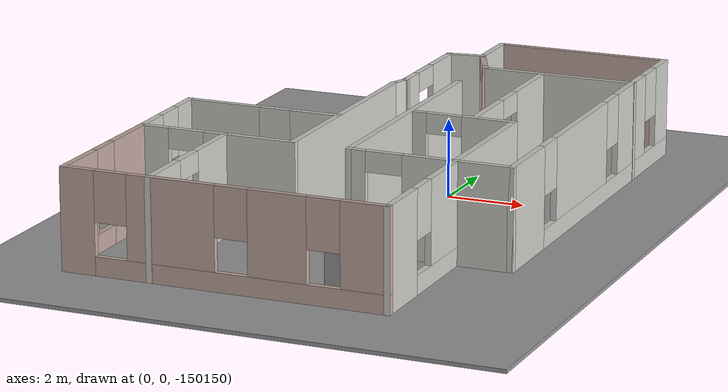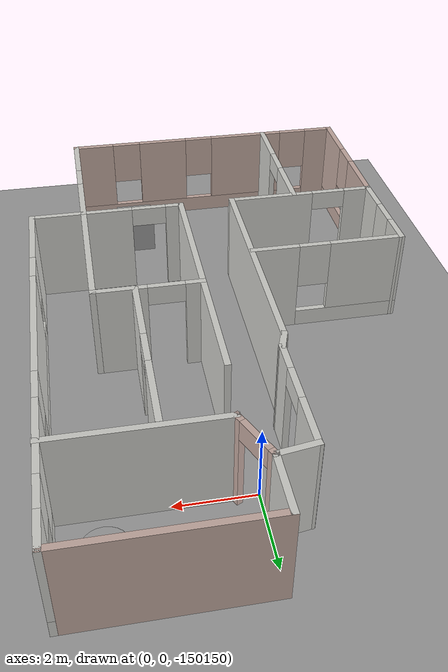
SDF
<sdf version="1.6">
 <world name="default">
  <model name="ground_plane">
   <static>1</static>
   <link name="link">
    <collision name="collision">
     <geometry><plane><normal>0 0 1</normal><size>100 100</size></plane></geometry>
     <surface>
      <contact><collide_bitmask>65535</collide_bitmask></contact>
      <friction><ode><mu>100</mu><mu2>50</mu2></ode></friction>
     </surface>
    </collision>
    <visual name="visual">
     <cast_shadows>0</cast_shadows>
     <geometry><plane><normal>0 0 1</normal><size>100 100</size></plane></geometry>
     <material>
      <script><uri>file://media/materials/scripts/gazebo.material</uri><name>Gazebo/Grey</name></script>
     </material>
    </visual>
   </link>
  </model>
  <model name="House1">
   <link name="link_0">
    <inertial>
     <mass>1</mass>
     <inertia>
      <ixx>0.166667</ixx>
      <ixy>0</ixy>
      <ixz>0</ixz>
      <iyy>0.166667</iyy>
      <iyz>0</iyz>
      <izz>0.166667</izz>
     </inertia>
    </inertial>
    <pose>0.40275 -6.78902 0.25 0 -0 0</pose>
    <visual name="visual">
     <geometry><box><size>1 1 1</size></box></geometry>
     <material>
      <lighting>1</lighting>
      <script><uri>file://media/materials/scripts/gazebo.material</uri><name>Gazebo/Grey</name></script>
     </material>
    </visual>
    <collision name="collision">
     <geometry><box><size>1 1 1</size></box></geometry>
     <surface>
      <friction>
       <ode><mu>1</mu><mu2>1</mu2><fdir1>0 0 0</fdir1><slip1>0</slip1><slip2>0</slip2></ode>
       <torsional>
        <coefficient>1</coefficient>
        <patch_radius>0</patch_radius>
        <surface_radius>0</surface_radius>
        <use_patch_radius>1</use_patch_radius>
        <ode><slip>0</slip></ode>
       </torsional>
      </friction>
      <bounce><restitution_coefficient>0</restitution_coefficient><threshold>1e+06</threshold></bounce>
      <contact>
       <collide_without_contact>0</collide_without_contact>
       <collide_without_contact_bitmask>1</collide_without_contact_bitmask>
       <collide_bitmask>1</collide_bitmask>
       <ode>
        <soft_cfm>0</soft_cfm>
        <soft_erp>0.2</soft_erp>
        <kp>1e+13</kp>
        <kd>1</kd>
        <max_vel>0.01</max_vel>
        <min_depth>0</min_depth>
       </ode>
       <bullet>
        <split_impulse>1</split_impulse>
        <split_impulse_penetration_threshold>-0.01</split_impulse_penetration_threshold>
        <soft_cfm>0</soft_cfm>
        <soft_erp>0.2</soft_erp>
        <kp>1e+13</kp>
        <kd>1</kd>
       </bullet>
      </contact>
     </surface>
    </collision>
   </link>
   <link name="link_1">
    <inertial>
     <mass>1</mass>
     <inertia><ixx>0.145833</ixx><ixy>0</ixy><ixz>0</ixz><iyy>0.145833</iyy><iyz>0</iyz><izz>0.125</izz></inertia>
    </inertial>
    <pose>2.1728 5.08141 0.25 0 -0 0</pose>
    <visual name="visual">
     <geometry><cylinder><radius>0.5</radius><length>1</length></cylinder></geometry>
     <material>
      <lighting>1</lighting>
      <script><uri>file://media/materials/scripts/gazebo.material</uri><name>Gazebo/Grey</name></script>
     </material>
    </visual>
    <collision name="collision">
     <geometry><cylinder><radius>0.5</radius><length>1</length></cylinder></geometry>
     <surface>
      <friction>
       <ode><mu>1</mu><mu2>1</mu2><fdir1>0 0 0</fdir1><slip1>0</slip1><slip2>0</slip2></ode>
       <torsional>
        <coefficient>1</coefficient>
        <patch_radius>0</patch_radius>
        <surface_radius>0</surface_radius>
        <use_patch_radius>1</use_patch_radius>
        <ode><slip>0</slip></ode>
       </torsional>
      </friction>
      <bounce><restitution_coefficient>0</restitution_coefficient><threshold>1e+06</threshold></bounce>
      <contact>
       <collide_without_contact>0</collide_without_contact>
       <collide_without_contact_bitmask>1</collide_without_contact_bitmask>
       <collide_bitmask>1</collide_bitmask>
       <ode>
        <soft_cfm>0</soft_cfm>
        <soft_erp>0.2</soft_erp>
        <kp>1e+13</kp>
        <kd>1</kd>
        <max_vel>0.01</max_vel>
        <min_depth>0</min_depth>
       </ode>
       <bullet>
        <split_impulse>1</split_impulse>
        <split_impulse_penetration_threshold>-0.01</split_impulse_penetration_threshold>
        <soft_cfm>0</soft_cfm>
        <soft_erp>0.2</soft_erp>
        <kp>1e+13</kp>
        <kd>1</kd>
       </bullet>
      </contact>
     </surface>
    </collision>
   </link>
   <model name="House1">
    <model name="House1">
     <model name="House1">
      <pose>-1e-06 -4e-06 0 0 -0 1.56364</pose>
      <link name="Wall_0">
       <collision name="Wall_0_Collision">
        <geometry><box><size>6 0.15 2.5</size></box></geometry>
        <pose>0 0 1.25 0 -0 0</pose>
       </collision>
       <visual name="Wall_0_Visual">
        <pose>0 0 1.25 0 -0 0</pose>
        <geometry><box><size>6 0.15 2.5</size></box></geometry>
        <material>
         <script><uri>file://media/materials/scripts/gazebo.material</uri><name>Gazebo/CeilingTiled</name></script>
         <ambient>0.760784 0.662745 0.627451 1</ambient>
        </material>
        <meta><layer>0</layer></meta>
       </visual>
       <pose>0.448232 -0.734689 0 0 -0 3.14159</pose>
      </link>
      <link name="Wall_10">
       <collision name="Wall_10_Collision">
        <geometry><box><size>1.5 0.15 2.5</size></box></geometry>
        <pose>0 0 1.25 0 -0 0</pose>
       </collision>
       <visual name="Wall_10_Visual">
        <pose>0 0 1.25 0 -0 0</pose>
        <geometry><box><size>1.5 0.15 2.5</size></box></geometry>
        <material>
         <script><uri>file://media/materials/scripts/gazebo.material</uri><name>Gazebo/CeilingTiled</name></script>
         <ambient>0.760784 0.662745 0.627451 1</ambient>
        </material>
        <meta><layer>0</layer></meta>
       </visual>
       <pose>3.37323 3.94031 0 0 -0 1.5708</pose>
      </link>
      <link name="Wall_11">
       <pose>-1.92677 4.61531 0 0 -0 3.14159</pose>
       <visual name="Wall_11_Visual_0">
        <pose>-4.38744 0 1.25 0 -0 0</pose>
        <geometry><box><size>1.97511 0.15 2.5</size></box></geometry>
        <material>
         <script><uri>file://media/materials/scripts/gazebo.material</uri><name>Gazebo/CeilingTiled</name></script>
         <ambient>0.760784 0.662745 0.627451 1</ambient>
        </material>
        <meta><layer>0</layer></meta>
       </visual>
       <collision name="Wall_11_Collision_0">
        <geometry><box><size>1.97511 0.15 2.5</size></box></geometry>
        <pose>-4.38744 0 1.25 0 -0 0</pose>
       </collision>
       <visual name="Wall_11_Visual_1">
        <pose>0.987555 0 0.25 0 -0 0</pose>
        <geometry><box><size>8.77489 0.15 0.5</size></box></geometry>
        <material>
         <script><uri>file://media/materials/scripts/gazebo.material</uri><name>Gazebo/CeilingTiled</name></script>
         <ambient>0.760784 0.662745 0.627451 1</ambient>
        </material>
        <meta><layer>0</layer></meta>
       </visual>
       <collision name="Wall_11_Collision_1">
        <geometry><box><size>8.77489 0.15 0.5</size></box></geometry>
        <pose>0.987555 0 0.25 0 -0 0</pose>
       </collision>
       <visual name="Wall_11_Visual_2">
        <pose>-0.877908 0 1.5 0 -0 0</pose>
        <geometry><box><size>3.44396 0.15 2</size></box></geometry>
        <material>
         <script><uri>file://media/materials/scripts/gazebo.material</uri><name>Gazebo/CeilingTiled</name></script>
         <ambient>0.760784 0.662745 0.627451 1</ambient>
        </material>
        <meta><layer>0</layer></meta>
       </visual>
       <collision name="Wall_11_Collision_2">
        <geometry><box><size>3.44396 0.15 2</size></box></geometry>
        <pose>-0.877908 0 1.5 0 -0 0</pose>
       </collision>
       <visual name="Wall_11_Visual_3">
        <pose>2.65145 0 1.5 0 -0 0</pose>
        <geometry><box><size>2.01476 0.15 2</size></box></geometry>
        <material>
         <script><uri>file://media/materials/scripts/gazebo.material</uri><name>Gazebo/CeilingTiled</name></script>
         <ambient>0.760784 0.662745 0.627451 1</ambient>
        </material>
        <meta><layer>0</layer></meta>
       </visual>
       <collision name="Wall_11_Collision_3">
        <geometry><box><size>2.01476 0.15 2</size></box></geometry>
        <pose>2.65145 0 1.5 0 -0 0</pose>
       </collision>
       <visual name="Wall_11_Visual_4">
        <pose>4.91692 0 1.5 0 -0 0</pose>
        <geometry><box><size>0.916165 0.15 2</size></box></geometry>
        <material>
         <script><uri>file://media/materials/scripts/gazebo.material</uri><name>Gazebo/CeilingTiled</name></script>
         <ambient>0.760784 0.662745 0.627451 1</ambient>
        </material>
        <meta><layer>0</layer></meta>
       </visual>
       <collision name="Wall_11_Collision_4">
        <geometry><box><size>0.916165 0.15 2</size></box></geometry>
        <pose>4.91692 0 1.5 0 -0 0</pose>
       </collision>
       <visual name="Wall_11_Visual_5">
        <pose>-2.99989 0 1.9 0 -0 0</pose>
        <geometry><box><size>0.8 0.15 1.2</size></box></geometry>
        <material>
         <script><uri>file://media/materials/scripts/gazebo.material</uri><name>Gazebo/CeilingTiled</name></script>
         <ambient>0.760784 0.662745 0.627451 1</ambient>
        </material>
        <meta><layer>0</layer></meta>
       </visual>
       <collision name="Wall_11_Collision_5">
        <geometry><box><size>0.8 0.15 1.2</size></box></geometry>
        <pose>-2.99989 0 1.9 0 -0 0</pose>
       </collision>
       <visual name="Wall_11_Visual_6">
        <pose>1.24407 0 1.9 0 -0 0</pose>
        <geometry><box><size>0.8 0.15 1.2</size></box></geometry>
        <material>
         <script><uri>file://media/materials/scripts/gazebo.material</uri><name>Gazebo/CeilingTiled</name></script>
         <ambient>0.760784 0.662745 0.627451 1</ambient>
        </material>
        <meta><layer>0</layer></meta>
       </visual>
       <collision name="Wall_11_Collision_6">
        <geometry><box><size>0.8 0.15 1.2</size></box></geometry>
        <pose>1.24407 0 1.9 0 -0 0</pose>
       </collision>
       <visual name="Wall_11_Visual_7">
        <pose>4.05884 0 1.9 0 -0 0</pose>
        <geometry><box><size>0.8 0.15 1.2</size></box></geometry>
        <material>
         <script><uri>file://media/materials/scripts/gazebo.material</uri><name>Gazebo/CeilingTiled</name></script>
         <ambient>0.760784 0.662745 0.627451 1</ambient>
        </material>
        <meta><layer>0</layer></meta>
       </visual>
       <collision name="Wall_11_Collision_7">
        <geometry><box><size>0.8 0.15 1.2</size></box></geometry>
        <pose>4.05884 0 1.9 0 -0 0</pose>
       </collision>
      </link>
      <link name="Wall_12">
       <collision name="Wall_12_Collision">
        <geometry><box><size>4.5 0.15 2.5</size></box></geometry>
        <pose>0 0 1.25 0 -0 0</pose>
       </collision>
       <visual name="Wall_12_Visual">
        <pose>0 0 1.25 0 -0 0</pose>
        <geometry><box><size>4.5 0.15 2.5</size></box></geometry>
        <material>
         <script><uri>file://media/materials/scripts/gazebo.material</uri><name>Gazebo/Grey</name></script>
         <ambient>0.760784 0.662745 0.627451 1</ambient>
        </material>
        <meta><layer>0</layer></meta>
       </visual>
       <pose>-7.22677 2.44031 0 0 -0 -1.5708</pose>
      </link>
      <link name="Wall_13">
       <collision name="Wall_13_Collision">
        <geometry><box><size>1.5 0.15 2.5</size></box></geometry>
        <pose>0 0 1.25 0 -0 0</pose>
       </collision>
       <visual name="Wall_13_Visual">
        <pose>0 0 1.25 0 -0 0</pose>
        <geometry><box><size>1.5 0.15 2.5</size></box></geometry>
        <material>
         <script><uri>file://media/materials/scripts/gazebo.material</uri><name>Gazebo/CeilingTiled</name></script>
         <ambient>0.760784 0.662745 0.627451 1</ambient>
        </material>
        <meta><layer>0</layer></meta>
       </visual>
       <pose>-6.55177 0.265311 0 0 -0 0</pose>
      </link>
      <link name="Wall_14">
       <collision name="Wall_14_Collision">
        <geometry><box><size>1.01703 0.15 2.5</size></box></geometry>
        <pose>0 0 1.25 0 -0 0</pose>
       </collision>
       <visual name="Wall_14_Visual">
        <pose>0 0 1.25 0 -0 0</pose>
        <geometry><box><size>1.01703 0.15 2.5</size></box></geometry>
        <material>
         <script><uri>file://media/materials/scripts/gazebo.material</uri><name>Gazebo/CeilingTiled</name></script>
         <ambient>0.760784 0.662745 0.627451 1</ambient>
        </material>
        <meta><layer>0</layer></meta>
       </visual>
       <pose>-5.81267 -0.163441 0 0 -0 -1.42239</pose>
      </link>
      <link name="Wall_16">
       <pose>3.37323 1.96531 0 0 -0 -1.5708</pose>
       <visual name="Wall_16_Visual_0">
        <pose>-0.698643 0 1.25 0 -0 0</pose>
        <geometry><box><size>1.35271 0.15 2.5</size></box></geometry>
        <material>
         <script><uri>file://media/materials/scripts/gazebo.material</uri><name>Gazebo/CeilingTiled</name></script>
         <ambient>0.760784 0.662745 0.627451 1</ambient>
        </material>
        <meta><layer>0</layer></meta>
       </visual>
       <collision name="Wall_16_Collision_0">
        <geometry><box><size>1.35271 0.15 2.5</size></box></geometry>
        <pose>-0.698643 0 1.25 0 -0 0</pose>
       </collision>
       <visual name="Wall_16_Visual_1">
        <pose>1.12636 0 1.25 0 -0 0</pose>
        <geometry><box><size>0.497286 0.15 2.5</size></box></geometry>
        <material>
         <script><uri>file://media/materials/scripts/gazebo.material</uri><name>Gazebo/CeilingTiled</name></script>
         <ambient>0.760784 0.662745 0.627451 1</ambient>
        </material>
        <meta><layer>0</layer></meta>
       </visual>
       <collision name="Wall_16_Collision_1">
        <geometry><box><size>0.497286 0.15 2.5</size></box></geometry>
        <pose>1.12636 0 1.25 0 -0 0</pose>
       </collision>
       <visual name="Wall_16_Visual_2">
        <pose>0.427714 0 2.25 0 -0 0</pose>
        <geometry><box><size>0.9 0.15 0.5</size></box></geometry>
        <material>
         <script><uri>file://media/materials/scripts/gazebo.material</uri><name>Gazebo/CeilingTiled</name></script>
         <ambient>0.760784 0.662745 0.627451 1</ambient>
        </material>
        <meta><layer>0</layer></meta>
       </visual>
       <collision name="Wall_16_Collision_2">
        <geometry><box><size>0.9 0.15 0.5</size></box></geometry>
        <pose>0.427714 0 2.25 0 -0 0</pose>
       </collision>
      </link>
      <link name="Wall_17">
       <collision name="Wall_17_Collision">
        <geometry><box><size>6.75 0.15 2.5</size></box></geometry>
        <pose>0 0 1.25 0 -0 0</pose>
       </collision>
       <visual name="Wall_17_Visual">
        <pose>0 0 1.25 0 -0 0</pose>
        <geometry><box><size>6.75 0.15 2.5</size></box></geometry>
        <material>
         <script><uri>file://media/materials/scripts/gazebo.material</uri><name>Gazebo/CeilingTiled</name></script>
         <ambient>0.760784 0.662745 0.627451 1</ambient>
        </material>
        <meta><layer>0</layer></meta>
       </visual>
       <pose>0.073232 0.665311 0 0 -0 3.14159</pose>
      </link>
      <link name="Wall_19">
       <collision name="Wall_19_Collision">
        <geometry><box><size>4 0.15 2.5</size></box></geometry>
        <pose>0 0 1.25 0 -0 0</pose>
       </collision>
       <visual name="Wall_19_Visual">
        <pose>0 0 1.25 0 -0 0</pose>
        <geometry><box><size>4 0.15 2.5</size></box></geometry>
        <material>
         <script><uri>file://media/materials/scripts/gazebo.material</uri><name>Gazebo/CeilingTiled</name></script>
         <ambient>0.760784 0.662745 0.627451 1</ambient>
        </material>
        <meta><layer>0</layer></meta>
       </visual>
       <pose>-4.75623 2.70166 0 0 -0 -1.5708</pose>
      </link>
      <link name="Wall_2">
       <pose>-4.32357 -0.592193 0 0 -0 0</pose>
       <visual name="Wall_2_Visual_0">
        <pose>-0.841136 0 1.25 0 -0 0</pose>
        <geometry><box><size>1.31773 0.15 2.5</size></box></geometry>
        <material>
         <script><uri>file://media/materials/scripts/gazebo.material</uri><name>Gazebo/CeilingTiled</name></script>
         <ambient>0.760784 0.662745 0.627451 1</ambient>
        </material>
        <meta><layer>0</layer></meta>
       </visual>
       <collision name="Wall_2_Collision_0">
        <geometry><box><size>1.31773 0.15 2.5</size></box></geometry>
        <pose>-0.841136 0 1.25 0 -0 0</pose>
       </collision>
       <visual name="Wall_2_Visual_1">
        <pose>1.10886 0 1.25 0 -0 0</pose>
        <geometry><box><size>0.782271 0.15 2.5</size></box></geometry>
        <material>
         <script><uri>file://media/materials/scripts/gazebo.material</uri><name>Gazebo/CeilingTiled</name></script>
         <ambient>0.760784 0.662745 0.627451 1</ambient>
        </material>
        <meta><layer>0</layer></meta>
       </visual>
       <collision name="Wall_2_Collision_1">
        <geometry><box><size>0.782271 0.15 2.5</size></box></geometry>
        <pose>1.10886 0 1.25 0 -0 0</pose>
       </collision>
       <visual name="Wall_2_Visual_2">
        <pose>0.267729 0 2.25 0 -0 0</pose>
        <geometry><box><size>0.9 0.15 0.5</size></box></geometry>
        <material>
         <script><uri>file://media/materials/scripts/gazebo.material</uri><name>Gazebo/CeilingTiled</name></script>
         <ambient>0.760784 0.662745 0.627451 1</ambient>
        </material>
        <meta><layer>0</layer></meta>
       </visual>
       <collision name="Wall_2_Collision_2">
        <geometry><box><size>0.9 0.15 0.5</size></box></geometry>
        <pose>0.267729 0 2.25 0 -0 0</pose>
       </collision>
      </link>
      <link name="Wall_20">
       <pose>-5.3165 0.520985 0 0 -0 -2.71348</pose>
       <visual name="Wall_20_Visual_0">
        <pose>-0.559907 0 1.25 0 -0 0</pose>
        <geometry><box><size>0.261885 0.15 2.5</size></box></geometry>
        <material>
         <script><uri>file://media/materials/scripts/gazebo.material</uri><name>Gazebo/Grey</name></script>
         <ambient>0.760784 0.662745 0.627451 1</ambient>
        </material>
        <meta><layer>0</layer></meta>
       </visual>
       <collision name="Wall_20_Collision_0">
        <geometry><box><size>0.261885 0.15 2.5</size></box></geometry>
        <pose>-0.559907 0 1.25 0 -0 0</pose>
       </collision>
       <visual name="Wall_20_Visual_1">
        <pose>0.580942 0 1.25 0 -0 0</pose>
        <geometry><box><size>0.219813 0.15 2.5</size></box></geometry>
        <material>
         <script><uri>file://media/materials/scripts/gazebo.material</uri><name>Gazebo/Grey</name></script>
         <ambient>0.760784 0.662745 0.627451 1</ambient>
        </material>
        <meta><layer>0</layer></meta>
       </visual>
       <collision name="Wall_20_Collision_1">
        <geometry><box><size>0.219813 0.15 2.5</size></box></geometry>
        <pose>0.580942 0 1.25 0 -0 0</pose>
       </collision>
       <visual name="Wall_20_Visual_2">
        <pose>0.021036 0 2.25 0 -0 0</pose>
        <geometry><box><size>0.9 0.15 0.5</size></box></geometry>
        <material>
         <script><uri>file://media/materials/scripts/gazebo.material</uri><name>Gazebo/Grey</name></script>
         <ambient>0.760784 0.662745 0.627451 1</ambient>
        </material>
        <meta><layer>0</layer></meta>
       </visual>
       <collision name="Wall_20_Collision_2">
        <geometry><box><size>0.9 0.15 0.5</size></box></geometry>
        <pose>0.021036 0 2.25 0 -0 0</pose>
       </collision>
      </link>
      <link name="Wall_23">
       <collision name="Wall_23_Collision">
        <geometry><box><size>3.75 0.15 2.5</size></box></geometry>
        <pose>0 0 1.25 0 -0 0</pose>
       </collision>
       <visual name="Wall_23_Visual">
        <pose>0 0 1.25 0 -0 0</pose>
        <geometry><box><size>3.75 0.15 2.5</size></box></geometry>
        <material>
         <script><uri>file://media/materials/scripts/gazebo.material</uri><name>Gazebo/CeilingTiled</name></script>
         <ambient>0.760784 0.662745 0.627451 1</ambient>
        </material>
        <meta><layer>0</layer></meta>
       </visual>
       <pose>1.57323 3.26531 0 0 -0 3.14159</pose>
      </link>
      <link name="Wall_24">
       <pose>-0.226768 1.96531 0 0 -0 -1.5708</pose>
       <visual name="Wall_24_Visual_0">
        <pose>-0.698643 0 1.25 0 -0 0</pose>
        <geometry><box><size>1.35271 0.15 2.5</size></box></geometry>
        <material>
         <script><uri>file://media/materials/scripts/gazebo.material</uri><name>Gazebo/CeilingTiled</name></script>
         <ambient>0.760784 0.662745 0.627451 1</ambient>
        </material>
        <meta><layer>0</layer></meta>
       </visual>
       <collision name="Wall_24_Collision_0">
        <geometry><box><size>1.35271 0.15 2.5</size></box></geometry>
        <pose>-0.698643 0 1.25 0 -0 0</pose>
       </collision>
       <visual name="Wall_24_Visual_1">
        <pose>1.12636 0 1.25 0 -0 0</pose>
        <geometry><box><size>0.497286 0.15 2.5</size></box></geometry>
        <material>
         <script><uri>file://media/materials/scripts/gazebo.material</uri><name>Gazebo/CeilingTiled</name></script>
         <ambient>0.760784 0.662745 0.627451 1</ambient>
        </material>
        <meta><layer>0</layer></meta>
       </visual>
       <collision name="Wall_24_Collision_1">
        <geometry><box><size>0.497286 0.15 2.5</size></box></geometry>
        <pose>1.12636 0 1.25 0 -0 0</pose>
       </collision>
       <visual name="Wall_24_Visual_2">
        <pose>0.427714 0 2.25 0 -0 0</pose>
        <geometry><box><size>0.9 0.15 0.5</size></box></geometry>
        <material>
         <script><uri>file://media/materials/scripts/gazebo.material</uri><name>Gazebo/CeilingTiled</name></script>
         <ambient>0.760784 0.662745 0.627451 1</ambient>
        </material>
        <meta><layer>0</layer></meta>
       </visual>
       <collision name="Wall_24_Collision_2">
        <geometry><box><size>0.9 0.15 0.5</size></box></geometry>
        <pose>0.427714 0 2.25 0 -0 0</pose>
       </collision>
      </link>
      <link name="Wall_26">
       <pose>-2.42974 2.27778 0 0 -0 3.14159</pose>
       <visual name="Wall_26_Visual_0">
        <pose>-1.36193 0 1.25 0 -0 0</pose>
        <geometry><box><size>1.77615 0.15 2.5</size></box></geometry>
        <material>
         <script><uri>file://media/materials/scripts/gazebo.material</uri><name>Gazebo/CeilingTiled</name></script>
         <ambient>0.760784 0.662745 0.627451 1</ambient>
        </material>
        <meta><layer>0</layer></meta>
       </visual>
       <collision name="Wall_26_Collision_0">
        <geometry><box><size>1.77615 0.15 2.5</size></box></geometry>
        <pose>-1.36193 0 1.25 0 -0 0</pose>
       </collision>
       <visual name="Wall_26_Visual_1">
        <pose>1.33807 0 1.25 0 -0 0</pose>
        <geometry><box><size>1.82385 0.15 2.5</size></box></geometry>
        <material>
         <script><uri>file://media/materials/scripts/gazebo.material</uri><name>Gazebo/CeilingTiled</name></script>
         <ambient>0.760784 0.662745 0.627451 1</ambient>
        </material>
        <meta><layer>0</layer></meta>
       </visual>
       <collision name="Wall_26_Collision_1">
        <geometry><box><size>1.82385 0.15 2.5</size></box></geometry>
        <pose>1.33807 0 1.25 0 -0 0</pose>
       </collision>
       <visual name="Wall_26_Visual_2">
        <pose>-0.023853 0 2.25 0 -0 0</pose>
        <geometry><box><size>0.9 0.15 0.5</size></box></geometry>
        <material>
         <script><uri>file://media/materials/scripts/gazebo.material</uri><name>Gazebo/CeilingTiled</name></script>
         <ambient>0.760784 0.662745 0.627451 1</ambient>
        </material>
        <meta><layer>0</layer></meta>
       </visual>
       <collision name="Wall_26_Collision_2">
        <geometry><box><size>0.9 0.15 0.5</size></box></geometry>
        <pose>-0.023853 0 2.25 0 -0 0</pose>
       </collision>
      </link>
      <link name="Wall_28">
       <pose>0.832401 -2.70046 0 0 -0 -1.5708</pose>
       <visual name="Wall_28_Visual_0">
        <pose>-1.37214 0 1.25 0 -0 0</pose>
        <geometry><box><size>1.25572 0.15 2.5</size></box></geometry>
        <material>
         <script><uri>file://media/materials/scripts/gazebo.material</uri><name>Gazebo/CeilingTiled</name></script>
         <ambient>0.760784 0.662745 0.627451 1</ambient>
        </material>
        <meta><layer>0</layer></meta>
       </visual>
       <collision name="Wall_28_Collision_0">
        <geometry><box><size>1.25572 0.15 2.5</size></box></geometry>
        <pose>-1.37214 0 1.25 0 -0 0</pose>
       </collision>
       <visual name="Wall_28_Visual_1">
        <pose>0.627858 0 0.25 0 -0 0</pose>
        <geometry><box><size>2.74428 0.15 0.5</size></box></geometry>
        <material>
         <script><uri>file://media/materials/scripts/gazebo.material</uri><name>Gazebo/CeilingTiled</name></script>
         <ambient>0.760784 0.662745 0.627451 1</ambient>
        </material>
        <meta><layer>0</layer></meta>
       </visual>
       <collision name="Wall_28_Collision_1">
        <geometry><box><size>2.74428 0.15 0.5</size></box></geometry>
        <pose>0.627858 0 0.25 0 -0 0</pose>
       </collision>
       <visual name="Wall_28_Visual_2">
        <pose>1.02786 0 1.5 0 -0 0</pose>
        <geometry><box><size>1.94428 0.15 2</size></box></geometry>
        <material>
         <script><uri>file://media/materials/scripts/gazebo.material</uri><name>Gazebo/CeilingTiled</name></script>
         <ambient>0.760784 0.662745 0.627451 1</ambient>
        </material>
        <meta><layer>0</layer></meta>
       </visual>
       <collision name="Wall_28_Collision_2">
        <geometry><box><size>1.94428 0.15 2</size></box></geometry>
        <pose>1.02786 0 1.5 0 -0 0</pose>
       </collision>
       <visual name="Wall_28_Visual_3">
        <pose>-0.344284 0 1.9 0 -0 0</pose>
        <geometry><box><size>0.8 0.15 1.2</size></box></geometry>
        <material>
         <script><uri>file://media/materials/scripts/gazebo.material</uri><name>Gazebo/CeilingTiled</name></script>
         <ambient>0.760784 0.662745 0.627451 1</ambient>
        </material>
        <meta><layer>0</layer></meta>
       </visual>
       <collision name="Wall_28_Collision_3">
        <geometry><box><size>0.8 0.15 1.2</size></box></geometry>
        <pose>-0.344284 0 1.9 0 -0 0</pose>
       </collision>
      </link>
      <link name="Wall_29">
       <pose>2.10282 -4.60508 0 0 -0 0.016047</pose>
       <visual name="Wall_29_Visual_0">
        <pose>-0.904292 0 1.25 0 -0 0</pose>
        <geometry><box><size>0.882574 0.15 2.5</size></box></geometry>
        <material>
         <script><uri>file://media/materials/scripts/gazebo.material</uri><name>Gazebo/CeilingTiled</name></script>
         <ambient>0.760784 0.662745 0.627451 1</ambient>
        </material>
        <meta><layer>0</layer></meta>
       </visual>
       <collision name="Wall_29_Collision_0">
        <geometry><box><size>0.882574 0.15 2.5</size></box></geometry>
        <pose>-0.904292 0 1.25 0 -0 0</pose>
       </collision>
       <visual name="Wall_29_Visual_1">
        <pose>0.441287 0 0.25 0 -0 0</pose>
        <geometry><box><size>1.80858 0.15 0.5</size></box></geometry>
        <material>
         <script><uri>file://media/materials/scripts/gazebo.material</uri><name>Gazebo/CeilingTiled</name></script>
         <ambient>0.760784 0.662745 0.627451 1</ambient>
        </material>
        <meta><layer>0</layer></meta>
       </visual>
       <collision name="Wall_29_Collision_1">
        <geometry><box><size>1.80858 0.15 0.5</size></box></geometry>
        <pose>0.441287 0 0.25 0 -0 0</pose>
       </collision>
       <visual name="Wall_29_Visual_2">
        <pose>0.841287 0 1.5 0 -0 0</pose>
        <geometry><box><size>1.00858 0.15 2</size></box></geometry>
        <material>
         <script><uri>file://media/materials/scripts/gazebo.material</uri><name>Gazebo/CeilingTiled</name></script>
         <ambient>0.760784 0.662745 0.627451 1</ambient>
        </material>
        <meta><layer>0</layer></meta>
       </visual>
       <collision name="Wall_29_Collision_2">
        <geometry><box><size>1.00858 0.15 2</size></box></geometry>
        <pose>0.841287 0 1.5 0 -0 0</pose>
       </collision>
       <visual name="Wall_29_Visual_3">
        <pose>-0.063005 0 1.9 0 -0 0</pose>
        <geometry><box><size>0.8 0.15 1.2</size></box></geometry>
        <material>
         <script><uri>file://media/materials/scripts/gazebo.material</uri><name>Gazebo/CeilingTiled</name></script>
         <ambient>0.760784 0.662745 0.627451 1</ambient>
        </material>
        <meta><layer>0</layer></meta>
       </visual>
       <collision name="Wall_29_Collision_3">
        <geometry><box><size>0.8 0.15 1.2</size></box></geometry>
        <pose>-0.063005 0 1.9 0 -0 0</pose>
       </collision>
      </link>
      <link name="Wall_3">
       <collision name="Wall_3_Collision">
        <geometry><box><size>0.59522 0.15 2.5</size></box></geometry>
        <pose>0 0 1.25 0 -0 0</pose>
       </collision>
       <visual name="Wall_3_Visual">
        <pose>0 0 1.25 0 -0 0</pose>
        <geometry><box><size>0.59522 0.15 2.5</size></box></geometry>
        <material>
         <script><uri>file://media/materials/scripts/gazebo.material</uri><name>Gazebo/CeilingTiled</name></script>
         <ambient>0.760784 0.662745 0.627451 1</ambient>
        </material>
        <meta><layer>0</layer></meta>
       </visual>
       <pose>-2.68767 -0.663441 0 0 -0 -0.325791</pose>
      </link>
      <link name="Wall_32">
       <pose>5.30177 -2.464 0 0 -0 0</pose>
       <visual name="Wall_32_Visual_0">
        <pose>-1.19288 0 1.25 0 -0 0</pose>
        <geometry><box><size>1.61423 0.15 2.5</size></box></geometry>
        <material>
         <script><uri>file://media/materials/scripts/gazebo.material</uri><name>Gazebo/CeilingTiled</name></script>
         <ambient>0.760784 0.662745 0.627451 1</ambient>
        </material>
        <meta><layer>0</layer></meta>
       </visual>
       <collision name="Wall_32_Collision_0">
        <geometry><box><size>1.61423 0.15 2.5</size></box></geometry>
        <pose>-1.19288 0 1.25 0 -0 0</pose>
       </collision>
       <visual name="Wall_32_Visual_1">
        <pose>1.25712 0 1.25 0 -0 0</pose>
        <geometry><box><size>1.48577 0.15 2.5</size></box></geometry>
        <material>
         <script><uri>file://media/materials/scripts/gazebo.material</uri><name>Gazebo/CeilingTiled</name></script>
         <ambient>0.760784 0.662745 0.627451 1</ambient>
        </material>
        <meta><layer>0</layer></meta>
       </visual>
       <collision name="Wall_32_Collision_1">
        <geometry><box><size>1.48577 0.15 2.5</size></box></geometry>
        <pose>1.25712 0 1.25 0 -0 0</pose>
       </collision>
       <visual name="Wall_32_Visual_2">
        <pose>0.064232 0 2.25 0 -0 0</pose>
        <geometry><box><size>0.9 0.15 0.5</size></box></geometry>
        <material>
         <script><uri>file://media/materials/scripts/gazebo.material</uri><name>Gazebo/CeilingTiled</name></script>
         <ambient>0.760784 0.662745 0.627451 1</ambient>
        </material>
        <meta><layer>0</layer></meta>
       </visual>
       <collision name="Wall_32_Collision_2">
        <geometry><box><size>0.9 0.15 0.5</size></box></geometry>
        <pose>0.064232 0 2.25 0 -0 0</pose>
       </collision>
      </link>
      <link name="Wall_6">
       <pose>3.37323 -2.65969 0 0 -0 -1.5708</pose>
       <visual name="Wall_6_Visual_0">
        <pose>-0.837103 0 1.25 0 -0 0</pose>
        <geometry><box><size>2.32579 0.15 2.5</size></box></geometry>
        <material>
         <script><uri>file://media/materials/scripts/gazebo.material</uri><name>Gazebo/CeilingTiled</name></script>
         <ambient>0.760784 0.662745 0.627451 1</ambient>
        </material>
        <meta><layer>0</layer></meta>
       </visual>
       <collision name="Wall_6_Collision_0">
        <geometry><box><size>2.32579 0.15 2.5</size></box></geometry>
        <pose>-0.837103 0 1.25 0 -0 0</pose>
       </collision>
       <visual name="Wall_6_Visual_1">
        <pose>1.6129 0 1.25 0 -0 0</pose>
        <geometry><box><size>0.774205 0.15 2.5</size></box></geometry>
        <material>
         <script><uri>file://media/materials/scripts/gazebo.material</uri><name>Gazebo/CeilingTiled</name></script>
         <ambient>0.760784 0.662745 0.627451 1</ambient>
        </material>
        <meta><layer>0</layer></meta>
       </visual>
       <collision name="Wall_6_Collision_1">
        <geometry><box><size>0.774205 0.15 2.5</size></box></geometry>
        <pose>1.6129 0 1.25 0 -0 0</pose>
       </collision>
       <visual name="Wall_6_Visual_2">
        <pose>0.775795 0 2.25 0 -0 0</pose>
        <geometry><box><size>0.9 0.15 0.5</size></box></geometry>
        <material>
         <script><uri>file://media/materials/scripts/gazebo.material</uri><name>Gazebo/CeilingTiled</name></script>
         <ambient>0.760784 0.662745 0.627451 1</ambient>
        </material>
        <meta><layer>0</layer></meta>
       </visual>
       <collision name="Wall_6_Collision_2">
        <geometry><box><size>0.9 0.15 0.5</size></box></geometry>
        <pose>0.775795 0 2.25 0 -0 0</pose>
       </collision>
      </link>
      <link name="Wall_7">
       <pose>5.29823 -4.58469 0 0 -0 0</pose>
       <visual name="Wall_7_Visual_0">
        <pose>-1.17046 0 1.25 0 -0 0</pose>
        <geometry><box><size>1.65908 0.15 2.5</size></box></geometry>
        <material>
         <script><uri>file://media/materials/scripts/gazebo.material</uri><name>Gazebo/Grey</name></script>
         <ambient>0.760784 0.662745 0.627451 1</ambient>
        </material>
        <meta><layer>0</layer></meta>
       </visual>
       <collision name="Wall_7_Collision_0">
        <geometry><box><size>1.65908 0.15 2.5</size></box></geometry>
        <pose>-1.17046 0 1.25 0 -0 0</pose>
       </collision>
       <visual name="Wall_7_Visual_1">
        <pose>0.82954 0 0.25 0 -0 0</pose>
        <geometry><box><size>2.34092 0.15 0.5</size></box></geometry>
        <material>
         <script><uri>file://media/materials/scripts/gazebo.material</uri><name>Gazebo/Grey</name></script>
         <ambient>0.760784 0.662745 0.627451 1</ambient>
        </material>
        <meta><layer>0</layer></meta>
       </visual>
       <collision name="Wall_7_Collision_1">
        <geometry><box><size>2.34092 0.15 0.5</size></box></geometry>
        <pose>0.82954 0 0.25 0 -0 0</pose>
       </collision>
       <visual name="Wall_7_Visual_2">
        <pose>1.22954 0 1.5 0 -0 0</pose>
        <geometry><box><size>1.54092 0.15 2</size></box></geometry>
        <material>
         <script><uri>file://media/materials/scripts/gazebo.material</uri><name>Gazebo/Grey</name></script>
         <ambient>0.760784 0.662745 0.627451 1</ambient>
        </material>
        <meta><layer>0</layer></meta>
       </visual>
       <collision name="Wall_7_Collision_2">
        <geometry><box><size>1.54092 0.15 2</size></box></geometry>
        <pose>1.22954 0 1.5 0 -0 0</pose>
       </collision>
       <visual name="Wall_7_Visual_3">
        <pose>0.059081 0 1.9 0 -0 0</pose>
        <geometry><box><size>0.8 0.15 1.2</size></box></geometry>
        <material>
         <script><uri>file://media/materials/scripts/gazebo.material</uri><name>Gazebo/Grey</name></script>
         <ambient>0.760784 0.662745 0.627451 1</ambient>
        </material>
        <meta><layer>0</layer></meta>
       </visual>
       <collision name="Wall_7_Collision_3">
        <geometry><box><size>0.8 0.15 1.2</size></box></geometry>
        <pose>0.059081 0 1.9 0 -0 0</pose>
       </collision>
      </link>
      <link name="Wall_8">
       <pose>7.22323 -0.659689 0 0 -0 1.5708</pose>
       <visual name="Wall_8_Visual_0">
        <pose>-3.5712 0 1.25 0 -0 0</pose>
        <geometry><box><size>0.857603 0.15 2.5</size></box></geometry>
        <material>
         <script><uri>file://media/materials/scripts/gazebo.material</uri><name>Gazebo/Grey</name></script>
         <ambient>0.760784 0.662745 0.627451 1</ambient>
        </material>
        <meta><layer>0</layer></meta>
       </visual>
       <collision name="Wall_8_Collision_0">
        <geometry><box><size>0.857603 0.15 2.5</size></box></geometry>
        <pose>-3.5712 0 1.25 0 -0 0</pose>
       </collision>
       <visual name="Wall_8_Visual_1">
        <pose>0.428802 0 0.25 0 -0 0</pose>
        <geometry><box><size>7.1424 0.15 0.5</size></box></geometry>
        <material>
         <script><uri>file://media/materials/scripts/gazebo.material</uri><name>Gazebo/Grey</name></script>
         <ambient>0.760784 0.662745 0.627451 1</ambient>
        </material>
        <meta><layer>0</layer></meta>
       </visual>
       <collision name="Wall_8_Collision_1">
        <geometry><box><size>7.1424 0.15 0.5</size></box></geometry>
        <pose>0.428802 0 0.25 0 -0 0</pose>
       </collision>
       <visual name="Wall_8_Visual_2">
        <pose>-1.26405 0 1.5 0 -0 0</pose>
        <geometry><box><size>2.1567 0.15 2</size></box></geometry>
        <material>
         <script><uri>file://media/materials/scripts/gazebo.material</uri><name>Gazebo/Grey</name></script>
         <ambient>0.760784 0.662745 0.627451 1</ambient>
        </material>
        <meta><layer>0</layer></meta>
       </visual>
       <collision name="Wall_8_Collision_2">
        <geometry><box><size>2.1567 0.15 2</size></box></geometry>
        <pose>-1.26405 0 1.5 0 -0 0</pose>
       </collision>
       <visual name="Wall_8_Visual_3">
        <pose>1.32055 0 1.5 0 -0 0</pose>
        <geometry><box><size>1.41249 0.15 2</size></box></geometry>
        <material>
         <script><uri>file://media/materials/scripts/gazebo.material</uri><name>Gazebo/Grey</name></script>
         <ambient>0.760784 0.662745 0.627451 1</ambient>
        </material>
        <meta><layer>0</layer></meta>
       </visual>
       <collision name="Wall_8_Collision_3">
        <geometry><box><size>1.41249 0.15 2</size></box></geometry>
        <pose>1.32055 0 1.5 0 -0 0</pose>
       </collision>
       <visual name="Wall_8_Visual_4">
        <pose>3.4134 0 1.5 0 -0 0</pose>
        <geometry><box><size>1.17321 0.15 2</size></box></geometry>
        <material>
         <script><uri>file://media/materials/scripts/gazebo.material</uri><name>Gazebo/Grey</name></script>
         <ambient>0.760784 0.662745 0.627451 1</ambient>
        </material>
        <meta><layer>0</layer></meta>
       </visual>
       <collision name="Wall_8_Collision_4">
        <geometry><box><size>1.17321 0.15 2</size></box></geometry>
        <pose>3.4134 0 1.5 0 -0 0</pose>
       </collision>
       <visual name="Wall_8_Visual_5">
        <pose>-2.7424 0 1.9 0 -0 0</pose>
        <geometry><box><size>0.8 0.15 1.2</size></box></geometry>
        <material>
         <script><uri>file://media/materials/scripts/gazebo.material</uri><name>Gazebo/Grey</name></script>
         <ambient>0.760784 0.662745 0.627451 1</ambient>
        </material>
        <meta><layer>0</layer></meta>
       </visual>
       <collision name="Wall_8_Collision_5">
        <geometry><box><size>0.8 0.15 1.2</size></box></geometry>
        <pose>-2.7424 0 1.9 0 -0 0</pose>
       </collision>
       <visual name="Wall_8_Visual_6">
        <pose>0.214298 0 1.9 0 -0 0</pose>
        <geometry><box><size>0.8 0.15 1.2</size></box></geometry>
        <material>
         <script><uri>file://media/materials/scripts/gazebo.material</uri><name>Gazebo/Grey</name></script>
         <ambient>0.760784 0.662745 0.627451 1</ambient>
        </material>
        <meta><layer>0</layer></meta>
       </visual>
       <collision name="Wall_8_Collision_6">
        <geometry><box><size>0.8 0.15 1.2</size></box></geometry>
        <pose>0.214298 0 1.9 0 -0 0</pose>
       </collision>
       <visual name="Wall_8_Visual_7">
        <pose>2.42679 0 1.9 0 -0 0</pose>
        <geometry><box><size>0.8 0.15 1.2</size></box></geometry>
        <material>
         <script><uri>file://media/materials/scripts/gazebo.material</uri><name>Gazebo/Grey</name></script>
         <ambient>0.760784 0.662745 0.627451 1</ambient>
        </material>
        <meta><layer>0</layer></meta>
       </visual>
       <collision name="Wall_8_Collision_7">
        <geometry><box><size>0.8 0.15 1.2</size></box></geometry>
        <pose>2.42679 0 1.9 0 -0 0</pose>
       </collision>
      </link>
      <link name="Wall_9">
       <pose>5.29823 3.26531 0 0 -0 3.14159</pose>
       <visual name="Wall_9_Visual_0">
        <pose>-1.2396 0 1.25 0 -0 0</pose>
        <geometry><box><size>1.52081 0.15 2.5</size></box></geometry>
        <material>
         <script><uri>file://media/materials/scripts/gazebo.material</uri><name>Gazebo/CeilingTiled</name></script>
         <ambient>0.760784 0.662745 0.627451 1</ambient>
        </material>
        <meta><layer>0</layer></meta>
       </visual>
       <collision name="Wall_9_Collision_0">
        <geometry><box><size>1.52081 0.15 2.5</size></box></geometry>
        <pose>-1.2396 0 1.25 0 -0 0</pose>
       </collision>
       <visual name="Wall_9_Visual_1">
        <pose>0.760403 0 0.25 0 -0 0</pose>
        <geometry><box><size>2.47919 0.15 0.5</size></box></geometry>
        <material>
         <script><uri>file://media/materials/scripts/gazebo.material</uri><name>Gazebo/CeilingTiled</name></script>
         <ambient>0.760784 0.662745 0.627451 1</ambient>
        </material>
        <meta><layer>0</layer></meta>
       </visual>
       <collision name="Wall_9_Collision_1">
        <geometry><box><size>2.47919 0.15 0.5</size></box></geometry>
        <pose>0.760403 0 0.25 0 -0 0</pose>
       </collision>
       <visual name="Wall_9_Visual_2">
        <pose>1.1604 0 1.5 0 -0 0</pose>
        <geometry><box><size>1.67919 0.15 2</size></box></geometry>
        <material>
         <script><uri>file://media/materials/scripts/gazebo.material</uri><name>Gazebo/CeilingTiled</name></script>
         <ambient>0.760784 0.662745 0.627451 1</ambient>
        </material>
        <meta><layer>0</layer></meta>
       </visual>
       <collision name="Wall_9_Collision_2">
        <geometry><box><size>1.67919 0.15 2</size></box></geometry>
        <pose>1.1604 0 1.5 0 -0 0</pose>
       </collision>
       <visual name="Wall_9_Visual_3">
        <pose>-0.079194 0 1.9 0 -0 0</pose>
        <geometry><box><size>0.8 0.15 1.2</size></box></geometry>
        <material>
         <script><uri>file://media/materials/scripts/gazebo.material</uri><name>Gazebo/CeilingTiled</name></script>
         <ambient>0.760784 0.662745 0.627451 1</ambient>
        </material>
        <meta><layer>0</layer></meta>
       </visual>
       <collision name="Wall_9_Collision_3">
        <geometry><box><size>0.8 0.15 1.2</size></box></geometry>
        <pose>-0.079194 0 1.9 0 -0 0</pose>
       </collision>
      </link>
      <static>1</static>
     </model>
     <static>0</static>
     <pose>0 -1e-06 0 0 0 -3.13287</pose>
    </model>
    <static>0</static>
    <pose>-1.35509 -1.20121 -0.25 0 -0 0</pose>
   </model>
   <model name="ground_plane">
    <static>1</static>
    <link name="link">
     <collision name="collision">
      <geometry><plane><normal>0 0 1</normal><size>100 100</size></plane></geometry>
      <surface>
       <contact><collide_bitmask>65535</collide_bitmask></contact>
       <friction><ode><mu>100</mu><mu2>50</mu2></ode></friction>
      </surface>
     </collision>
     <visual name="visual">
      <cast_shadows>0</cast_shadows>
      <geometry><plane><normal>0 0 1</normal><size>100 100</size></plane></geometry>
      <material>
       <script><uri>file://media/materials/scripts/gazebo.material</uri><name>Gazebo/Grey</name></script>
      </material>
     </visual>
    </link>
    <pose>-1.22046 2.90881 -0.25 0 -0 0</pose>
   </model>
   <static>0</static>
   <pose>1.28956 -2.90808 -150149 0 -0 0</pose>
  </model>
 </world>
</sdf>
